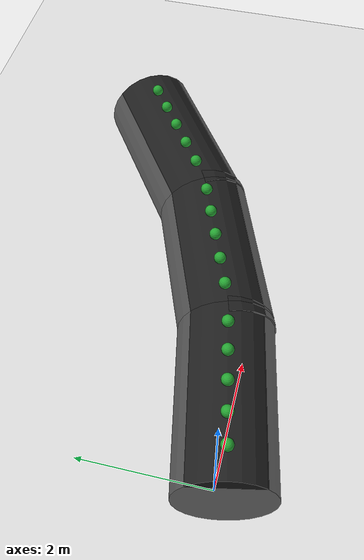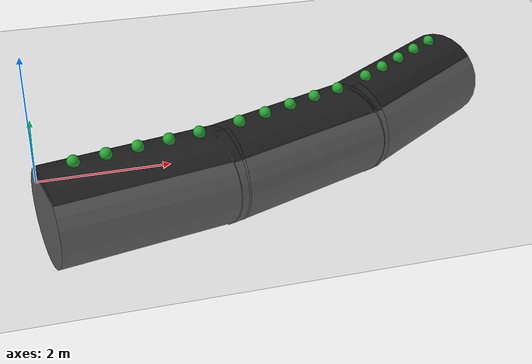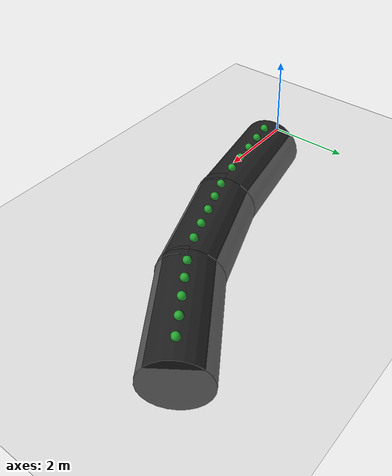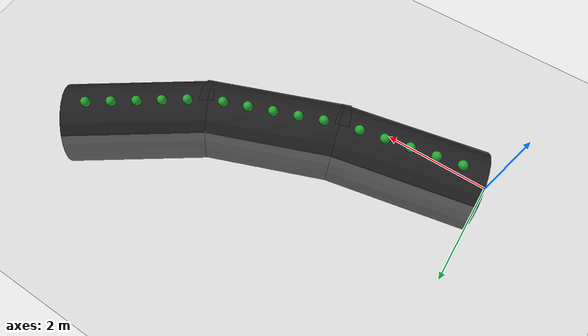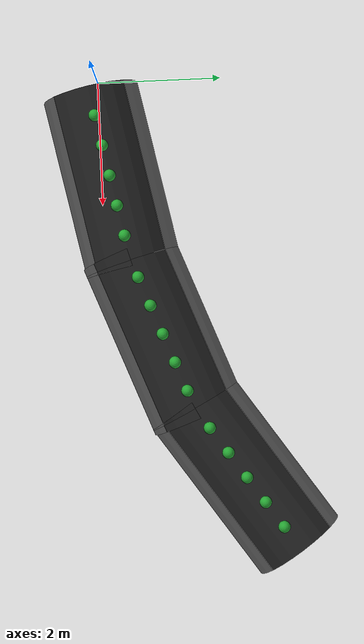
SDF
<sdf version="1.6">
 <world name="default">
  <light name="sun" type="directional">
   <pose>0 0 10 0 -0 0</pose>
   <diffuse>0.8 0.8 0.8 1</diffuse>
   <specular>0.2 0.2 0.2 1</specular>
   <attenuation>
    <range>1000</range>
    <constant>0.9</constant>
    <linear>0.01</linear>
    <quadratic>0.001</quadratic>
   </attenuation>
   <direction>-0.5 0.1 -0.9</direction>
  </light>
  <model name="ground_plane">
   <static>1</static>
   <link name="link">
    <collision name="collision">
     <geometry><plane><normal>0 0 1</normal><size>100 100</size></plane></geometry>
     <surface>
      <contact><collide_bitmask>65535</collide_bitmask></contact>
      <friction><ode><mu>100</mu><mu2>50</mu2></ode></friction>
     </surface>
    </collision>
    <visual name="visual">
     <cast_shadows>0</cast_shadows>
     <geometry><plane><normal>0 0 1</normal><size>100 100</size></plane></geometry>
     <material>
      <script><uri>file://media/materials/scripts/gazebo.material</uri><name>Gazebo/Grey</name></script>
     </material>
    </visual>
   </link>
  </model>
  <gravity>0 0 -9.8</gravity>
  <magnetic_field>6e-06 2.3e-05 -4.2e-05</magnetic_field>
  <atmosphere type="adiabatic"/>
  <physics name="default_physics" default="0" type="ode">
   <max_step_size>0.001</max_step_size>
   <real_time_factor>1</real_time_factor>
   <real_time_update_rate>1000</real_time_update_rate>
  </physics>
  <scene><ambient>0.4 0.4 0.4 1</ambient><background>0.7 0.7 0.7 1</background><shadows>1</shadows></scene>
  <spherical_coordinates>
   <surface_model>EARTH_WGS84</surface_model>
   <latitude_deg>0</latitude_deg>
   <longitude_deg>0</longitude_deg>
   <elevation>0</elevation>
   <heading_deg>0</heading_deg>
  </spherical_coordinates>
  <model name="ex_plant1">
   <static>true</static>
   <link name="link_0">
    <pose>-0 -0 -0.18 0 -0 0</pose>
    <inertial>
     <mass>100</mass>
     <inertia>
      <ixx>0.166667</ixx>
      <ixy>0</ixy>
      <ixz>0</ixz>
      <iyy>0.166667</iyy>
      <iyz>0</iyz>
      <izz>0.166667</izz>
     </inertia>
    </inertial>
    <visual name="visual">
     <pose>0 0 -0.65 3.14159 1.57079 3.14159</pose>
     <geometry><cylinder><radius>0.8</radius><length>3</length></cylinder></geometry>
     <material>
      <lighting>1</lighting>
      <script><uri>file://media/materials/scripts/gazebo.material</uri><name>Gazebo/Black</name></script>
      <shader type="pixel"><normal_map>__default__</normal_map></shader>
      <ambient>0.1 0.1 0.1 1</ambient>
      <diffuse>0.7 0.7 0.7 1</diffuse>
      <specular>0.01 0.01 0.01 1</specular>
      <emissive>0 0 0 1</emissive>
     </material>
    </visual>
    <collision name="collision">
     <geometry><box><size>2 0.8 0.2</size></box></geometry>
     <surface>
      <friction>
       <ode><mu>1</mu><mu2>1</mu2><fdir1>0 0 0</fdir1><slip1>0</slip1><slip2>0</slip2></ode>
       <torsional>
        <coefficient>1</coefficient>
        <patch_radius>0</patch_radius>
        <surface_radius>0</surface_radius>
        <use_patch_radius>1</use_patch_radius>
        <ode><slip>0</slip></ode>
       </torsional>
      </friction>
      <bounce><restitution_coefficient>0</restitution_coefficient><threshold>1e+06</threshold></bounce>
      <contact>
       <collide_without_contact>0</collide_without_contact>
       <collide_without_contact_bitmask>1</collide_without_contact_bitmask>
       <collide_bitmask>1</collide_bitmask>
       <ode>
        <soft_cfm>0</soft_cfm>
        <soft_erp>0.2</soft_erp>
        <kp>1e+13</kp>
        <kd>1</kd>
        <max_vel>0.01</max_vel>
        <min_depth>0</min_depth>
       </ode>
       <bullet>
        <split_impulse>1</split_impulse>
        <split_impulse_penetration_threshold>-0.01</split_impulse_penetration_threshold>
        <soft_cfm>0</soft_cfm>
        <soft_erp>0.2</soft_erp>
        <kp>1e+13</kp>
        <kd>1</kd>
       </bullet>
      </contact>
     </surface>
    </collision>
   </link>
   <link name="link_1_clone_0">
    <pose>-1 -0 0.02 0 -0 0</pose>
    <inertial>
     <mass>1</mass>
     <inertia><ixx>0.1</ixx><ixy>0</ixy><ixz>0</ixz><iyy>0.1</iyy><iyz>0</iyz><izz>0.1</izz></inertia>
    </inertial>
    <visual name="visual">
     <geometry><sphere><radius>0.1</radius></sphere></geometry>
     <material>
      <lighting>1</lighting>
      <script><uri>file://media/materials/scripts/gazebo.material</uri><name>Gazebo/Green</name></script>
      <shader type="pixel"><normal_map>__default__</normal_map></shader>
      <ambient>0.3 1 0.3 1</ambient>
      <diffuse>0.7 0.7 0.7 1</diffuse>
      <specular>0.01 0.01 0.01 1</specular>
      <emissive>0 0 0 1</emissive>
     </material>
    </visual>
    <collision name="collision">
     <geometry><sphere><radius>0.1</radius></sphere></geometry>
     <surface>
      <friction>
       <ode><mu>1</mu><mu2>1</mu2><fdir1>0 0 0</fdir1><slip1>0</slip1><slip2>0</slip2></ode>
       <torsional>
        <coefficient>1</coefficient>
        <patch_radius>0</patch_radius>
        <surface_radius>0</surface_radius>
        <use_patch_radius>1</use_patch_radius>
        <ode><slip>0</slip></ode>
       </torsional>
      </friction>
      <bounce><restitution_coefficient>0</restitution_coefficient><threshold>1e+06</threshold></bounce>
      <contact>
       <collide_without_contact>0</collide_without_contact>
       <collide_without_contact_bitmask>1</collide_without_contact_bitmask>
       <collide_bitmask>1</collide_bitmask>
       <ode>
        <soft_cfm>0</soft_cfm>
        <soft_erp>0.2</soft_erp>
        <kp>1e+13</kp>
        <kd>1</kd>
        <max_vel>0.01</max_vel>
        <min_depth>0</min_depth>
       </ode>
       <bullet>
        <split_impulse>1</split_impulse>
        <split_impulse_penetration_threshold>-0.01</split_impulse_penetration_threshold>
        <soft_cfm>0</soft_cfm>
        <soft_erp>0.2</soft_erp>
        <kp>1e+13</kp>
        <kd>1</kd>
       </bullet>
      </contact>
     </surface>
    </collision>
   </link>
   <link name="link_1_clone_1">
    <pose>-0.5 0 0.02 0 -0 0</pose>
    <inertial>
     <mass>1</mass>
     <inertia><ixx>0.1</ixx><ixy>0</ixy><ixz>0</ixz><iyy>0.1</iyy><iyz>0</iyz><izz>0.1</izz></inertia>
    </inertial>
    <visual name="visual">
     <geometry><sphere><radius>0.1</radius></sphere></geometry>
     <material>
      <lighting>1</lighting>
      <script><uri>file://media/materials/scripts/gazebo.material</uri><name>Gazebo/Green</name></script>
      <shader type="pixel"><normal_map>__default__</normal_map></shader>
      <ambient>0.3 1 0.3 1</ambient>
      <diffuse>0.7 0.7 0.7 1</diffuse>
      <specular>0.01 0.01 0.01 1</specular>
      <emissive>0 0 0 1</emissive>
     </material>
    </visual>
    <collision name="collision">
     <geometry><sphere><radius>0.1</radius></sphere></geometry>
     <surface>
      <friction>
       <ode><mu>1</mu><mu2>1</mu2><fdir1>0 0 0</fdir1><slip1>0</slip1><slip2>0</slip2></ode>
       <torsional>
        <coefficient>1</coefficient>
        <patch_radius>0</patch_radius>
        <surface_radius>0</surface_radius>
        <use_patch_radius>1</use_patch_radius>
        <ode><slip>0</slip></ode>
       </torsional>
      </friction>
      <bounce><restitution_coefficient>0</restitution_coefficient><threshold>1e+06</threshold></bounce>
      <contact>
       <collide_without_contact>0</collide_without_contact>
       <collide_without_contact_bitmask>1</collide_without_contact_bitmask>
       <collide_bitmask>1</collide_bitmask>
       <ode>
        <soft_cfm>0</soft_cfm>
        <soft_erp>0.2</soft_erp>
        <kp>1e+13</kp>
        <kd>1</kd>
        <max_vel>0.01</max_vel>
        <min_depth>0</min_depth>
       </ode>
       <bullet>
        <split_impulse>1</split_impulse>
        <split_impulse_penetration_threshold>-0.01</split_impulse_penetration_threshold>
        <soft_cfm>0</soft_cfm>
        <soft_erp>0.2</soft_erp>
        <kp>1e+13</kp>
        <kd>1</kd>
       </bullet>
      </contact>
     </surface>
    </collision>
   </link>
   <link name="link_1_clone_2">
    <pose>0.5 0 0.02 0 -0 0</pose>
    <inertial>
     <mass>1</mass>
     <inertia><ixx>0.1</ixx><ixy>0</ixy><ixz>0</ixz><iyy>0.1</iyy><iyz>0</iyz><izz>0.1</izz></inertia>
    </inertial>
    <visual name="visual">
     <geometry><sphere><radius>0.1</radius></sphere></geometry>
     <material>
      <lighting>1</lighting>
      <script><uri>file://media/materials/scripts/gazebo.material</uri><name>Gazebo/Green</name></script>
      <shader type="pixel"><normal_map>__default__</normal_map></shader>
      <ambient>0.3 1 0.3 1</ambient>
      <diffuse>0.7 0.7 0.7 1</diffuse>
      <specular>0.01 0.01 0.01 1</specular>
      <emissive>0 0 0 1</emissive>
     </material>
    </visual>
    <collision name="collision">
     <geometry><sphere><radius>0.1</radius></sphere></geometry>
     <surface>
      <friction>
       <ode><mu>1</mu><mu2>1</mu2><fdir1>0 0 0</fdir1><slip1>0</slip1><slip2>0</slip2></ode>
       <torsional>
        <coefficient>1</coefficient>
        <patch_radius>0</patch_radius>
        <surface_radius>0</surface_radius>
        <use_patch_radius>1</use_patch_radius>
        <ode><slip>0</slip></ode>
       </torsional>
      </friction>
      <bounce><restitution_coefficient>0</restitution_coefficient><threshold>1e+06</threshold></bounce>
      <contact>
       <collide_without_contact>0</collide_without_contact>
       <collide_without_contact_bitmask>1</collide_without_contact_bitmask>
       <collide_bitmask>1</collide_bitmask>
       <ode>
        <soft_cfm>0</soft_cfm>
        <soft_erp>0.2</soft_erp>
        <kp>1e+13</kp>
        <kd>1</kd>
        <max_vel>0.01</max_vel>
        <min_depth>0</min_depth>
       </ode>
       <bullet>
        <split_impulse>1</split_impulse>
        <split_impulse_penetration_threshold>-0.01</split_impulse_penetration_threshold>
        <soft_cfm>0</soft_cfm>
        <soft_erp>0.2</soft_erp>
        <kp>1e+13</kp>
        <kd>1</kd>
       </bullet>
      </contact>
     </surface>
    </collision>
   </link>
   <link name="link_1_clone_2_clone">
    <pose>1 0 0.02 0 -0 0</pose>
    <inertial>
     <mass>1</mass>
     <inertia><ixx>0.1</ixx><ixy>0</ixy><ixz>0</ixz><iyy>0.1</iyy><iyz>0</iyz><izz>0.1</izz></inertia>
    </inertial>
    <visual name="visual">
     <geometry><sphere><radius>0.1</radius></sphere></geometry>
     <material>
      <lighting>1</lighting>
      <script><uri>file://media/materials/scripts/gazebo.material</uri><name>Gazebo/Green</name></script>
      <shader type="pixel"><normal_map>__default__</normal_map></shader>
      <ambient>0.3 1 0.3 1</ambient>
      <diffuse>0.7 0.7 0.7 1</diffuse>
      <specular>0.01 0.01 0.01 1</specular>
      <emissive>0 0 0 1</emissive>
     </material>
    </visual>
    <collision name="collision">
     <geometry><sphere><radius>0.1</radius></sphere></geometry>
     <surface>
      <friction>
       <ode><mu>1</mu><mu2>1</mu2><fdir1>0 0 0</fdir1><slip1>0</slip1><slip2>0</slip2></ode>
       <torsional>
        <coefficient>1</coefficient>
        <patch_radius>0</patch_radius>
        <surface_radius>0</surface_radius>
        <use_patch_radius>1</use_patch_radius>
        <ode><slip>0</slip></ode>
       </torsional>
      </friction>
      <bounce><restitution_coefficient>0</restitution_coefficient><threshold>1e+06</threshold></bounce>
      <contact>
       <collide_without_contact>0</collide_without_contact>
       <collide_without_contact_bitmask>1</collide_without_contact_bitmask>
       <collide_bitmask>1</collide_bitmask>
       <ode>
        <soft_cfm>0</soft_cfm>
        <soft_erp>0.2</soft_erp>
        <kp>1e+13</kp>
        <kd>1</kd>
        <max_vel>0.01</max_vel>
        <min_depth>0</min_depth>
       </ode>
       <bullet>
        <split_impulse>1</split_impulse>
        <split_impulse_penetration_threshold>-0.01</split_impulse_penetration_threshold>
        <soft_cfm>0</soft_cfm>
        <soft_erp>0.2</soft_erp>
        <kp>1e+13</kp>
        <kd>1</kd>
       </bullet>
      </contact>
     </surface>
    </collision>
   </link>
   <link name="link_1_clone_3">
    <pose>0 -0 0.02 0 -0 0</pose>
    <inertial>
     <mass>1</mass>
     <inertia><ixx>0.1</ixx><ixy>0</ixy><ixz>0</ixz><iyy>0.1</iyy><iyz>0</iyz><izz>0.1</izz></inertia>
    </inertial>
    <visual name="visual">
     <geometry><sphere><radius>0.1</radius></sphere></geometry>
     <material>
      <lighting>1</lighting>
      <script><uri>file://media/materials/scripts/gazebo.material</uri><name>Gazebo/Green</name></script>
      <shader type="pixel"><normal_map>__default__</normal_map></shader>
      <ambient>0.3 1 0.3 1</ambient>
      <diffuse>0.7 0.7 0.7 1</diffuse>
      <specular>0.01 0.01 0.01 1</specular>
      <emissive>0 0 0 1</emissive>
     </material>
    </visual>
    <collision name="collision">
     <geometry><sphere><radius>0.1</radius></sphere></geometry>
     <surface>
      <friction>
       <ode><mu>1</mu><mu2>1</mu2><fdir1>0 0 0</fdir1><slip1>0</slip1><slip2>0</slip2></ode>
       <torsional>
        <coefficient>1</coefficient>
        <patch_radius>0</patch_radius>
        <surface_radius>0</surface_radius>
        <use_patch_radius>1</use_patch_radius>
        <ode><slip>0</slip></ode>
       </torsional>
      </friction>
      <bounce><restitution_coefficient>0</restitution_coefficient><threshold>1e+06</threshold></bounce>
      <contact>
       <collide_without_contact>0</collide_without_contact>
       <collide_without_contact_bitmask>1</collide_without_contact_bitmask>
       <collide_bitmask>1</collide_bitmask>
       <ode>
        <soft_cfm>0</soft_cfm>
        <soft_erp>0.2</soft_erp>
        <kp>1e+13</kp>
        <kd>1</kd>
        <max_vel>0.01</max_vel>
        <min_depth>0</min_depth>
       </ode>
       <bullet>
        <split_impulse>1</split_impulse>
        <split_impulse_penetration_threshold>-0.01</split_impulse_penetration_threshold>
        <soft_cfm>0</soft_cfm>
        <soft_erp>0.2</soft_erp>
        <kp>1e+13</kp>
        <kd>1</kd>
       </bullet>
      </contact>
     </surface>
    </collision>
   </link>
   <joint name="link_0_JOINT_2" type="revolute">
    <parent>link_0</parent>
    <child>link_1_clone_0</child>
    <axis>
     <xyz>1 0 0</xyz>
     <use_parent_model_frame>0</use_parent_model_frame>
     <limit>
      <lower>-1.79769e+308</lower>
      <upper>1.79769e+308</upper>
      <effort>-1</effort>
      <velocity>-1</velocity>
     </limit>
     <dynamics>
      <spring_reference>0</spring_reference>
      <spring_stiffness>0</spring_stiffness>
      <damping>0</damping>
      <friction>0</friction>
     </dynamics>
    </axis>
    <physics>
     <ode><limit><cfm>0</cfm><erp>0.2</erp></limit><suspension><cfm>0</cfm><erp>0.2</erp></suspension></ode>
    </physics>
   </joint>
   <joint name="link_0_JOINT_3" type="revolute">
    <parent>link_0</parent>
    <child>link_1_clone_1</child>
    <axis>
     <xyz>1 0 0</xyz>
     <use_parent_model_frame>0</use_parent_model_frame>
     <limit>
      <lower>-1.79769e+308</lower>
      <upper>1.79769e+308</upper>
      <effort>-1</effort>
      <velocity>-1</velocity>
     </limit>
     <dynamics>
      <spring_reference>0</spring_reference>
      <spring_stiffness>0</spring_stiffness>
      <damping>0</damping>
      <friction>0</friction>
     </dynamics>
    </axis>
    <physics>
     <ode><limit><cfm>0</cfm><erp>0.2</erp></limit><suspension><cfm>0</cfm><erp>0.2</erp></suspension></ode>
    </physics>
   </joint>
   <joint name="link_0_JOINT_4" type="revolute">
    <parent>link_0</parent>
    <child>link_1_clone_3</child>
    <axis>
     <xyz>1 0 0</xyz>
     <use_parent_model_frame>0</use_parent_model_frame>
     <limit>
      <lower>-1.79769e+308</lower>
      <upper>1.79769e+308</upper>
      <effort>-1</effort>
      <velocity>-1</velocity>
     </limit>
     <dynamics>
      <spring_reference>0</spring_reference>
      <spring_stiffness>0</spring_stiffness>
      <damping>0</damping>
      <friction>0</friction>
     </dynamics>
    </axis>
    <physics>
     <ode><limit><cfm>0</cfm><erp>0.2</erp></limit><suspension><cfm>0</cfm><erp>0.2</erp></suspension></ode>
    </physics>
   </joint>
   <joint name="link_0_JOINT_5" type="revolute">
    <parent>link_0</parent>
    <child>link_1_clone_2</child>
    <axis>
     <xyz>1 0 0</xyz>
     <use_parent_model_frame>0</use_parent_model_frame>
     <limit>
      <lower>-1.79769e+308</lower>
      <upper>1.79769e+308</upper>
      <effort>-1</effort>
      <velocity>-1</velocity>
     </limit>
     <dynamics>
      <spring_reference>0</spring_reference>
      <spring_stiffness>0</spring_stiffness>
      <damping>0</damping>
      <friction>0</friction>
     </dynamics>
    </axis>
    <physics>
     <ode><limit><cfm>0</cfm><erp>0.2</erp></limit><suspension><cfm>0</cfm><erp>0.2</erp></suspension></ode>
    </physics>
   </joint>
   <joint name="link_0_JOINT_6" type="revolute">
    <parent>link_0</parent>
    <child>link_1_clone_2_clone</child>
    <axis>
     <xyz>1 0 0</xyz>
     <use_parent_model_frame>0</use_parent_model_frame>
     <limit>
      <lower>-1.79769e+308</lower>
      <upper>1.79769e+308</upper>
      <effort>-1</effort>
      <velocity>-1</velocity>
     </limit>
     <dynamics>
      <spring_reference>0</spring_reference>
      <spring_stiffness>0</spring_stiffness>
      <damping>0</damping>
      <friction>0</friction>
     </dynamics>
    </axis>
    <physics>
     <ode><limit><cfm>0</cfm><erp>0.2</erp></limit><suspension><cfm>0</cfm><erp>0.2</erp></suspension></ode>
    </physics>
   </joint>
   <static>0</static>
   <pose>1.54467 0.142167 0.279979 -3.2e-05 2.2e-05 0.199439</pose>
  </model>
  <model name="ex_plant1_clone">
   <link name="link_0">
    <pose>-0 -0 -0.18 0 -0 0</pose>
    <inertial>
     <mass>100</mass>
     <inertia>
      <ixx>0.166667</ixx>
      <ixy>0</ixy>
      <ixz>0</ixz>
      <iyy>0.166667</iyy>
      <iyz>0</iyz>
      <izz>0.166667</izz>
     </inertia>
    </inertial>
    <visual name="visual">
     <pose>0 0 -0.65 3.14159 1.57079 3.14159</pose>
     <geometry><cylinder><radius>0.8</radius><length>3</length></cylinder></geometry>
     <material>
      <lighting>1</lighting>
      <script><uri>file://media/materials/scripts/gazebo.material</uri><name>Gazebo/Black</name></script>
      <shader type="pixel"><normal_map>__default__</normal_map></shader>
      <ambient>0.1 0.1 0.1 1</ambient>
      <diffuse>0.7 0.7 0.7 1</diffuse>
      <specular>0.01 0.01 0.01 1</specular>
      <emissive>0 0 0 1</emissive>
     </material>
    </visual>
    <collision name="collision">
     <geometry><box><size>2 0.8 0.2</size></box></geometry>
     <surface>
      <friction>
       <ode><mu>1</mu><mu2>1</mu2><fdir1>0 0 0</fdir1><slip1>0</slip1><slip2>0</slip2></ode>
       <torsional>
        <coefficient>1</coefficient>
        <patch_radius>0</patch_radius>
        <surface_radius>0</surface_radius>
        <use_patch_radius>1</use_patch_radius>
        <ode><slip>0</slip></ode>
       </torsional>
      </friction>
      <bounce><restitution_coefficient>0</restitution_coefficient><threshold>1e+06</threshold></bounce>
      <contact>
       <collide_without_contact>0</collide_without_contact>
       <collide_without_contact_bitmask>1</collide_without_contact_bitmask>
       <collide_bitmask>1</collide_bitmask>
       <ode>
        <soft_cfm>0</soft_cfm>
        <soft_erp>0.2</soft_erp>
        <kp>1e+13</kp>
        <kd>1</kd>
        <max_vel>0.01</max_vel>
        <min_depth>0</min_depth>
       </ode>
       <bullet>
        <split_impulse>1</split_impulse>
        <split_impulse_penetration_threshold>-0.01</split_impulse_penetration_threshold>
        <soft_cfm>0</soft_cfm>
        <soft_erp>0.2</soft_erp>
        <kp>1e+13</kp>
        <kd>1</kd>
       </bullet>
      </contact>
     </surface>
    </collision>
   </link>
   <link name="link_1_clone_0">
    <pose>-1 -0 0.02 0 -0 0</pose>
    <inertial>
     <mass>1</mass>
     <inertia><ixx>0.1</ixx><ixy>0</ixy><ixz>0</ixz><iyy>0.1</iyy><iyz>0</iyz><izz>0.1</izz></inertia>
    </inertial>
    <visual name="visual">
     <geometry><sphere><radius>0.1</radius></sphere></geometry>
     <material>
      <lighting>1</lighting>
      <script><uri>file://media/materials/scripts/gazebo.material</uri><name>Gazebo/Green</name></script>
      <shader type="pixel"><normal_map>__default__</normal_map></shader>
      <ambient>0.3 1 0.3 1</ambient>
      <diffuse>0.7 0.7 0.7 1</diffuse>
      <specular>0.01 0.01 0.01 1</specular>
      <emissive>0 0 0 1</emissive>
     </material>
    </visual>
    <collision name="collision">
     <geometry><sphere><radius>0.1</radius></sphere></geometry>
     <surface>
      <friction>
       <ode><mu>1</mu><mu2>1</mu2><fdir1>0 0 0</fdir1><slip1>0</slip1><slip2>0</slip2></ode>
       <torsional>
        <coefficient>1</coefficient>
        <patch_radius>0</patch_radius>
        <surface_radius>0</surface_radius>
        <use_patch_radius>1</use_patch_radius>
        <ode><slip>0</slip></ode>
       </torsional>
      </friction>
      <bounce><restitution_coefficient>0</restitution_coefficient><threshold>1e+06</threshold></bounce>
      <contact>
       <collide_without_contact>0</collide_without_contact>
       <collide_without_contact_bitmask>1</collide_without_contact_bitmask>
       <collide_bitmask>1</collide_bitmask>
       <ode>
        <soft_cfm>0</soft_cfm>
        <soft_erp>0.2</soft_erp>
        <kp>1e+13</kp>
        <kd>1</kd>
        <max_vel>0.01</max_vel>
        <min_depth>0</min_depth>
       </ode>
       <bullet>
        <split_impulse>1</split_impulse>
        <split_impulse_penetration_threshold>-0.01</split_impulse_penetration_threshold>
        <soft_cfm>0</soft_cfm>
        <soft_erp>0.2</soft_erp>
        <kp>1e+13</kp>
        <kd>1</kd>
       </bullet>
      </contact>
     </surface>
    </collision>
   </link>
   <link name="link_1_clone_1">
    <pose>-0.5 0 0.02 0 -0 0</pose>
    <inertial>
     <mass>1</mass>
     <inertia><ixx>0.1</ixx><ixy>0</ixy><ixz>0</ixz><iyy>0.1</iyy><iyz>0</iyz><izz>0.1</izz></inertia>
    </inertial>
    <visual name="visual">
     <geometry><sphere><radius>0.1</radius></sphere></geometry>
     <material>
      <lighting>1</lighting>
      <script><uri>file://media/materials/scripts/gazebo.material</uri><name>Gazebo/Green</name></script>
      <shader type="pixel"><normal_map>__default__</normal_map></shader>
      <ambient>0.3 1 0.3 1</ambient>
      <diffuse>0.7 0.7 0.7 1</diffuse>
      <specular>0.01 0.01 0.01 1</specular>
      <emissive>0 0 0 1</emissive>
     </material>
    </visual>
    <collision name="collision">
     <geometry><sphere><radius>0.1</radius></sphere></geometry>
     <surface>
      <friction>
       <ode><mu>1</mu><mu2>1</mu2><fdir1>0 0 0</fdir1><slip1>0</slip1><slip2>0</slip2></ode>
       <torsional>
        <coefficient>1</coefficient>
        <patch_radius>0</patch_radius>
        <surface_radius>0</surface_radius>
        <use_patch_radius>1</use_patch_radius>
        <ode><slip>0</slip></ode>
       </torsional>
      </friction>
      <bounce><restitution_coefficient>0</restitution_coefficient><threshold>1e+06</threshold></bounce>
      <contact>
       <collide_without_contact>0</collide_without_contact>
       <collide_without_contact_bitmask>1</collide_without_contact_bitmask>
       <collide_bitmask>1</collide_bitmask>
       <ode>
        <soft_cfm>0</soft_cfm>
        <soft_erp>0.2</soft_erp>
        <kp>1e+13</kp>
        <kd>1</kd>
        <max_vel>0.01</max_vel>
        <min_depth>0</min_depth>
       </ode>
       <bullet>
        <split_impulse>1</split_impulse>
        <split_impulse_penetration_threshold>-0.01</split_impulse_penetration_threshold>
        <soft_cfm>0</soft_cfm>
        <soft_erp>0.2</soft_erp>
        <kp>1e+13</kp>
        <kd>1</kd>
       </bullet>
      </contact>
     </surface>
    </collision>
   </link>
   <link name="link_1_clone_2">
    <pose>0.5 0 0.02 0 -0 0</pose>
    <inertial>
     <mass>1</mass>
     <inertia><ixx>0.1</ixx><ixy>0</ixy><ixz>0</ixz><iyy>0.1</iyy><iyz>0</iyz><izz>0.1</izz></inertia>
    </inertial>
    <visual name="visual">
     <geometry><sphere><radius>0.1</radius></sphere></geometry>
     <material>
      <lighting>1</lighting>
      <script><uri>file://media/materials/scripts/gazebo.material</uri><name>Gazebo/Green</name></script>
      <shader type="pixel"><normal_map>__default__</normal_map></shader>
      <ambient>0.3 1 0.3 1</ambient>
      <diffuse>0.7 0.7 0.7 1</diffuse>
      <specular>0.01 0.01 0.01 1</specular>
      <emissive>0 0 0 1</emissive>
     </material>
    </visual>
    <collision name="collision">
     <geometry><sphere><radius>0.1</radius></sphere></geometry>
     <surface>
      <friction>
       <ode><mu>1</mu><mu2>1</mu2><fdir1>0 0 0</fdir1><slip1>0</slip1><slip2>0</slip2></ode>
       <torsional>
        <coefficient>1</coefficient>
        <patch_radius>0</patch_radius>
        <surface_radius>0</surface_radius>
        <use_patch_radius>1</use_patch_radius>
        <ode><slip>0</slip></ode>
       </torsional>
      </friction>
      <bounce><restitution_coefficient>0</restitution_coefficient><threshold>1e+06</threshold></bounce>
      <contact>
       <collide_without_contact>0</collide_without_contact>
       <collide_without_contact_bitmask>1</collide_without_contact_bitmask>
       <collide_bitmask>1</collide_bitmask>
       <ode>
        <soft_cfm>0</soft_cfm>
        <soft_erp>0.2</soft_erp>
        <kp>1e+13</kp>
        <kd>1</kd>
        <max_vel>0.01</max_vel>
        <min_depth>0</min_depth>
       </ode>
       <bullet>
        <split_impulse>1</split_impulse>
        <split_impulse_penetration_threshold>-0.01</split_impulse_penetration_threshold>
        <soft_cfm>0</soft_cfm>
        <soft_erp>0.2</soft_erp>
        <kp>1e+13</kp>
        <kd>1</kd>
       </bullet>
      </contact>
     </surface>
    </collision>
   </link>
   <link name="link_1_clone_2_clone">
    <pose>1 0 0.02 0 -0 0</pose>
    <inertial>
     <mass>1</mass>
     <inertia><ixx>0.1</ixx><ixy>0</ixy><ixz>0</ixz><iyy>0.1</iyy><iyz>0</iyz><izz>0.1</izz></inertia>
    </inertial>
    <visual name="visual">
     <geometry><sphere><radius>0.1</radius></sphere></geometry>
     <material>
      <lighting>1</lighting>
      <script><uri>file://media/materials/scripts/gazebo.material</uri><name>Gazebo/Green</name></script>
      <shader type="pixel"><normal_map>__default__</normal_map></shader>
      <ambient>0.3 1 0.3 1</ambient>
      <diffuse>0.7 0.7 0.7 1</diffuse>
      <specular>0.01 0.01 0.01 1</specular>
      <emissive>0 0 0 1</emissive>
     </material>
    </visual>
    <collision name="collision">
     <geometry><sphere><radius>0.1</radius></sphere></geometry>
     <surface>
      <friction>
       <ode><mu>1</mu><mu2>1</mu2><fdir1>0 0 0</fdir1><slip1>0</slip1><slip2>0</slip2></ode>
       <torsional>
        <coefficient>1</coefficient>
        <patch_radius>0</patch_radius>
        <surface_radius>0</surface_radius>
        <use_patch_radius>1</use_patch_radius>
        <ode><slip>0</slip></ode>
       </torsional>
      </friction>
      <bounce><restitution_coefficient>0</restitution_coefficient><threshold>1e+06</threshold></bounce>
      <contact>
       <collide_without_contact>0</collide_without_contact>
       <collide_without_contact_bitmask>1</collide_without_contact_bitmask>
       <collide_bitmask>1</collide_bitmask>
       <ode>
        <soft_cfm>0</soft_cfm>
        <soft_erp>0.2</soft_erp>
        <kp>1e+13</kp>
        <kd>1</kd>
        <max_vel>0.01</max_vel>
        <min_depth>0</min_depth>
       </ode>
       <bullet>
        <split_impulse>1</split_impulse>
        <split_impulse_penetration_threshold>-0.01</split_impulse_penetration_threshold>
        <soft_cfm>0</soft_cfm>
        <soft_erp>0.2</soft_erp>
        <kp>1e+13</kp>
        <kd>1</kd>
       </bullet>
      </contact>
     </surface>
    </collision>
   </link>
   <link name="link_1_clone_3">
    <pose>0 -0 0.02 0 -0 0</pose>
    <inertial>
     <mass>1</mass>
     <inertia><ixx>0.1</ixx><ixy>0</ixy><ixz>0</ixz><iyy>0.1</iyy><iyz>0</iyz><izz>0.1</izz></inertia>
    </inertial>
    <visual name="visual">
     <geometry><sphere><radius>0.1</radius></sphere></geometry>
     <material>
      <lighting>1</lighting>
      <script><uri>file://media/materials/scripts/gazebo.material</uri><name>Gazebo/Green</name></script>
      <shader type="pixel"><normal_map>__default__</normal_map></shader>
      <ambient>0.3 1 0.3 1</ambient>
      <diffuse>0.7 0.7 0.7 1</diffuse>
      <specular>0.01 0.01 0.01 1</specular>
      <emissive>0 0 0 1</emissive>
     </material>
    </visual>
    <collision name="collision">
     <geometry><sphere><radius>0.1</radius></sphere></geometry>
     <surface>
      <friction>
       <ode><mu>1</mu><mu2>1</mu2><fdir1>0 0 0</fdir1><slip1>0</slip1><slip2>0</slip2></ode>
       <torsional>
        <coefficient>1</coefficient>
        <patch_radius>0</patch_radius>
        <surface_radius>0</surface_radius>
        <use_patch_radius>1</use_patch_radius>
        <ode><slip>0</slip></ode>
       </torsional>
      </friction>
      <bounce><restitution_coefficient>0</restitution_coefficient><threshold>1e+06</threshold></bounce>
      <contact>
       <collide_without_contact>0</collide_without_contact>
       <collide_without_contact_bitmask>1</collide_without_contact_bitmask>
       <collide_bitmask>1</collide_bitmask>
       <ode>
        <soft_cfm>0</soft_cfm>
        <soft_erp>0.2</soft_erp>
        <kp>1e+13</kp>
        <kd>1</kd>
        <max_vel>0.01</max_vel>
        <min_depth>0</min_depth>
       </ode>
       <bullet>
        <split_impulse>1</split_impulse>
        <split_impulse_penetration_threshold>-0.01</split_impulse_penetration_threshold>
        <soft_cfm>0</soft_cfm>
        <soft_erp>0.2</soft_erp>
        <kp>1e+13</kp>
        <kd>1</kd>
       </bullet>
      </contact>
     </surface>
    </collision>
   </link>
   <joint name="link_0_JOINT_2" type="revolute">
    <parent>link_0</parent>
    <child>link_1_clone_0</child>
    <axis>
     <xyz>1 0 0</xyz>
     <use_parent_model_frame>0</use_parent_model_frame>
     <limit>
      <lower>-1.79769e+308</lower>
      <upper>1.79769e+308</upper>
      <effort>-1</effort>
      <velocity>-1</velocity>
     </limit>
     <dynamics>
      <spring_reference>0</spring_reference>
      <spring_stiffness>0</spring_stiffness>
      <damping>0</damping>
      <friction>0</friction>
     </dynamics>
    </axis>
    <physics>
     <ode><limit><cfm>0</cfm><erp>0.2</erp></limit><suspension><cfm>0</cfm><erp>0.2</erp></suspension></ode>
    </physics>
   </joint>
   <joint name="link_0_JOINT_3" type="revolute">
    <parent>link_0</parent>
    <child>link_1_clone_1</child>
    <axis>
     <xyz>1 0 0</xyz>
     <use_parent_model_frame>0</use_parent_model_frame>
     <limit>
      <lower>-1.79769e+308</lower>
      <upper>1.79769e+308</upper>
      <effort>-1</effort>
      <velocity>-1</velocity>
     </limit>
     <dynamics>
      <spring_reference>0</spring_reference>
      <spring_stiffness>0</spring_stiffness>
      <damping>0</damping>
      <friction>0</friction>
     </dynamics>
    </axis>
    <physics>
     <ode><limit><cfm>0</cfm><erp>0.2</erp></limit><suspension><cfm>0</cfm><erp>0.2</erp></suspension></ode>
    </physics>
   </joint>
   <joint name="link_0_JOINT_4" type="revolute">
    <parent>link_0</parent>
    <child>link_1_clone_3</child>
    <axis>
     <xyz>1 0 0</xyz>
     <use_parent_model_frame>0</use_parent_model_frame>
     <limit>
      <lower>-1.79769e+308</lower>
      <upper>1.79769e+308</upper>
      <effort>-1</effort>
      <velocity>-1</velocity>
     </limit>
     <dynamics>
      <spring_reference>0</spring_reference>
      <spring_stiffness>0</spring_stiffness>
      <damping>0</damping>
      <friction>0</friction>
     </dynamics>
    </axis>
    <physics>
     <ode><limit><cfm>0</cfm><erp>0.2</erp></limit><suspension><cfm>0</cfm><erp>0.2</erp></suspension></ode>
    </physics>
   </joint>
   <joint name="link_0_JOINT_5" type="revolute">
    <parent>link_0</parent>
    <child>link_1_clone_2</child>
    <axis>
     <xyz>1 0 0</xyz>
     <use_parent_model_frame>0</use_parent_model_frame>
     <limit>
      <lower>-1.79769e+308</lower>
      <upper>1.79769e+308</upper>
      <effort>-1</effort>
      <velocity>-1</velocity>
     </limit>
     <dynamics>
      <spring_reference>0</spring_reference>
      <spring_stiffness>0</spring_stiffness>
      <damping>0</damping>
      <friction>0</friction>
     </dynamics>
    </axis>
    <physics>
     <ode><limit><cfm>0</cfm><erp>0.2</erp></limit><suspension><cfm>0</cfm><erp>0.2</erp></suspension></ode>
    </physics>
   </joint>
   <joint name="link_0_JOINT_6" type="revolute">
    <parent>link_0</parent>
    <child>link_1_clone_2_clone</child>
    <axis>
     <xyz>1 0 0</xyz>
     <use_parent_model_frame>0</use_parent_model_frame>
     <limit>
      <lower>-1.79769e+308</lower>
      <upper>1.79769e+308</upper>
      <effort>-1</effort>
      <velocity>-1</velocity>
     </limit>
     <dynamics>
      <spring_reference>0</spring_reference>
      <spring_stiffness>0</spring_stiffness>
      <damping>0</damping>
      <friction>0</friction>
     </dynamics>
    </axis>
    <physics>
     <ode><limit><cfm>0</cfm><erp>0.2</erp></limit><suspension><cfm>0</cfm><erp>0.2</erp></suspension></ode>
    </physics>
   </joint>
   <static>0</static>
   <pose>4.13866 0.888039 0.279979 -2.8e-05 2.7e-05 0.366538</pose>
  </model>
  <model name="ex_plant1_clone_clone">
   <link name="link_0">
    <pose>-0 -0 -0.18 0 -0 0</pose>
    <inertial>
     <mass>100</mass>
     <inertia>
      <ixx>0.166667</ixx>
      <ixy>0</ixy>
      <ixz>0</ixz>
      <iyy>0.166667</iyy>
      <iyz>0</iyz>
      <izz>0.166667</izz>
     </inertia>
    </inertial>
    <visual name="visual">
     <pose>0 0 -0.65 3.14159 1.57079 3.14159</pose>
     <geometry><cylinder><radius>0.8</radius><length>3</length></cylinder></geometry>
     <material>
      <lighting>1</lighting>
      <script><uri>file://media/materials/scripts/gazebo.material</uri><name>Gazebo/Black</name></script>
      <shader type="pixel"><normal_map>__default__</normal_map></shader>
      <ambient>0.1 0.1 0.1 1</ambient>
      <diffuse>0.7 0.7 0.7 1</diffuse>
      <specular>0.01 0.01 0.01 1</specular>
      <emissive>0 0 0 1</emissive>
     </material>
    </visual>
    <collision name="collision">
     <geometry><box><size>2 0.8 0.2</size></box></geometry>
     <surface>
      <friction>
       <ode><mu>1</mu><mu2>1</mu2><fdir1>0 0 0</fdir1><slip1>0</slip1><slip2>0</slip2></ode>
       <torsional>
        <coefficient>1</coefficient>
        <patch_radius>0</patch_radius>
        <surface_radius>0</surface_radius>
        <use_patch_radius>1</use_patch_radius>
        <ode><slip>0</slip></ode>
       </torsional>
      </friction>
      <bounce><restitution_coefficient>0</restitution_coefficient><threshold>1e+06</threshold></bounce>
      <contact>
       <collide_without_contact>0</collide_without_contact>
       <collide_without_contact_bitmask>1</collide_without_contact_bitmask>
       <collide_bitmask>1</collide_bitmask>
       <ode>
        <soft_cfm>0</soft_cfm>
        <soft_erp>0.2</soft_erp>
        <kp>1e+13</kp>
        <kd>1</kd>
        <max_vel>0.01</max_vel>
        <min_depth>0</min_depth>
       </ode>
       <bullet>
        <split_impulse>1</split_impulse>
        <split_impulse_penetration_threshold>-0.01</split_impulse_penetration_threshold>
        <soft_cfm>0</soft_cfm>
        <soft_erp>0.2</soft_erp>
        <kp>1e+13</kp>
        <kd>1</kd>
       </bullet>
      </contact>
     </surface>
    </collision>
   </link>
   <link name="link_1_clone_0">
    <pose>-1 -0 0.02 0 -0 0</pose>
    <inertial>
     <mass>1</mass>
     <inertia><ixx>0.1</ixx><ixy>0</ixy><ixz>0</ixz><iyy>0.1</iyy><iyz>0</iyz><izz>0.1</izz></inertia>
    </inertial>
    <visual name="visual">
     <geometry><sphere><radius>0.1</radius></sphere></geometry>
     <material>
      <lighting>1</lighting>
      <script><uri>file://media/materials/scripts/gazebo.material</uri><name>Gazebo/Green</name></script>
      <shader type="pixel"><normal_map>__default__</normal_map></shader>
      <ambient>0.3 1 0.3 1</ambient>
      <diffuse>0.7 0.7 0.7 1</diffuse>
      <specular>0.01 0.01 0.01 1</specular>
      <emissive>0 0 0 1</emissive>
     </material>
    </visual>
    <collision name="collision">
     <geometry><sphere><radius>0.1</radius></sphere></geometry>
     <surface>
      <friction>
       <ode><mu>1</mu><mu2>1</mu2><fdir1>0 0 0</fdir1><slip1>0</slip1><slip2>0</slip2></ode>
       <torsional>
        <coefficient>1</coefficient>
        <patch_radius>0</patch_radius>
        <surface_radius>0</surface_radius>
        <use_patch_radius>1</use_patch_radius>
        <ode><slip>0</slip></ode>
       </torsional>
      </friction>
      <bounce><restitution_coefficient>0</restitution_coefficient><threshold>1e+06</threshold></bounce>
      <contact>
       <collide_without_contact>0</collide_without_contact>
       <collide_without_contact_bitmask>1</collide_without_contact_bitmask>
       <collide_bitmask>1</collide_bitmask>
       <ode>
        <soft_cfm>0</soft_cfm>
        <soft_erp>0.2</soft_erp>
        <kp>1e+13</kp>
        <kd>1</kd>
        <max_vel>0.01</max_vel>
        <min_depth>0</min_depth>
       </ode>
       <bullet>
        <split_impulse>1</split_impulse>
        <split_impulse_penetration_threshold>-0.01</split_impulse_penetration_threshold>
        <soft_cfm>0</soft_cfm>
        <soft_erp>0.2</soft_erp>
        <kp>1e+13</kp>
        <kd>1</kd>
       </bullet>
      </contact>
     </surface>
    </collision>
   </link>
   <link name="link_1_clone_1">
    <pose>-0.5 0 0.02 0 -0 0</pose>
    <inertial>
     <mass>1</mass>
     <inertia><ixx>0.1</ixx><ixy>0</ixy><ixz>0</ixz><iyy>0.1</iyy><iyz>0</iyz><izz>0.1</izz></inertia>
    </inertial>
    <visual name="visual">
     <geometry><sphere><radius>0.1</radius></sphere></geometry>
     <material>
      <lighting>1</lighting>
      <script><uri>file://media/materials/scripts/gazebo.material</uri><name>Gazebo/Green</name></script>
      <shader type="pixel"><normal_map>__default__</normal_map></shader>
      <ambient>0.3 1 0.3 1</ambient>
      <diffuse>0.7 0.7 0.7 1</diffuse>
      <specular>0.01 0.01 0.01 1</specular>
      <emissive>0 0 0 1</emissive>
     </material>
    </visual>
    <collision name="collision">
     <geometry><sphere><radius>0.1</radius></sphere></geometry>
     <surface>
      <friction>
       <ode><mu>1</mu><mu2>1</mu2><fdir1>0 0 0</fdir1><slip1>0</slip1><slip2>0</slip2></ode>
       <torsional>
        <coefficient>1</coefficient>
        <patch_radius>0</patch_radius>
        <surface_radius>0</surface_radius>
        <use_patch_radius>1</use_patch_radius>
        <ode><slip>0</slip></ode>
       </torsional>
      </friction>
      <bounce><restitution_coefficient>0</restitution_coefficient><threshold>1e+06</threshold></bounce>
      <contact>
       <collide_without_contact>0</collide_without_contact>
       <collide_without_contact_bitmask>1</collide_without_contact_bitmask>
       <collide_bitmask>1</collide_bitmask>
       <ode>
        <soft_cfm>0</soft_cfm>
        <soft_erp>0.2</soft_erp>
        <kp>1e+13</kp>
        <kd>1</kd>
        <max_vel>0.01</max_vel>
        <min_depth>0</min_depth>
       </ode>
       <bullet>
        <split_impulse>1</split_impulse>
        <split_impulse_penetration_threshold>-0.01</split_impulse_penetration_threshold>
        <soft_cfm>0</soft_cfm>
        <soft_erp>0.2</soft_erp>
        <kp>1e+13</kp>
        <kd>1</kd>
       </bullet>
      </contact>
     </surface>
    </collision>
   </link>
   <link name="link_1_clone_2">
    <pose>0.5 0 0.02 0 -0 0</pose>
    <inertial>
     <mass>1</mass>
     <inertia><ixx>0.1</ixx><ixy>0</ixy><ixz>0</ixz><iyy>0.1</iyy><iyz>0</iyz><izz>0.1</izz></inertia>
    </inertial>
    <visual name="visual">
     <geometry><sphere><radius>0.1</radius></sphere></geometry>
     <material>
      <lighting>1</lighting>
      <script><uri>file://media/materials/scripts/gazebo.material</uri><name>Gazebo/Green</name></script>
      <shader type="pixel"><normal_map>__default__</normal_map></shader>
      <ambient>0.3 1 0.3 1</ambient>
      <diffuse>0.7 0.7 0.7 1</diffuse>
      <specular>0.01 0.01 0.01 1</specular>
      <emissive>0 0 0 1</emissive>
     </material>
    </visual>
    <collision name="collision">
     <geometry><sphere><radius>0.1</radius></sphere></geometry>
     <surface>
      <friction>
       <ode><mu>1</mu><mu2>1</mu2><fdir1>0 0 0</fdir1><slip1>0</slip1><slip2>0</slip2></ode>
       <torsional>
        <coefficient>1</coefficient>
        <patch_radius>0</patch_radius>
        <surface_radius>0</surface_radius>
        <use_patch_radius>1</use_patch_radius>
        <ode><slip>0</slip></ode>
       </torsional>
      </friction>
      <bounce><restitution_coefficient>0</restitution_coefficient><threshold>1e+06</threshold></bounce>
      <contact>
       <collide_without_contact>0</collide_without_contact>
       <collide_without_contact_bitmask>1</collide_without_contact_bitmask>
       <collide_bitmask>1</collide_bitmask>
       <ode>
        <soft_cfm>0</soft_cfm>
        <soft_erp>0.2</soft_erp>
        <kp>1e+13</kp>
        <kd>1</kd>
        <max_vel>0.01</max_vel>
        <min_depth>0</min_depth>
       </ode>
       <bullet>
        <split_impulse>1</split_impulse>
        <split_impulse_penetration_threshold>-0.01</split_impulse_penetration_threshold>
        <soft_cfm>0</soft_cfm>
        <soft_erp>0.2</soft_erp>
        <kp>1e+13</kp>
        <kd>1</kd>
       </bullet>
      </contact>
     </surface>
    </collision>
   </link>
   <link name="link_1_clone_2_clone">
    <pose>1 0 0.02 0 -0 0</pose>
    <inertial>
     <mass>1</mass>
     <inertia><ixx>0.1</ixx><ixy>0</ixy><ixz>0</ixz><iyy>0.1</iyy><iyz>0</iyz><izz>0.1</izz></inertia>
    </inertial>
    <visual name="visual">
     <geometry><sphere><radius>0.1</radius></sphere></geometry>
     <material>
      <lighting>1</lighting>
      <script><uri>file://media/materials/scripts/gazebo.material</uri><name>Gazebo/Green</name></script>
      <shader type="pixel"><normal_map>__default__</normal_map></shader>
      <ambient>0.3 1 0.3 1</ambient>
      <diffuse>0.7 0.7 0.7 1</diffuse>
      <specular>0.01 0.01 0.01 1</specular>
      <emissive>0 0 0 1</emissive>
     </material>
    </visual>
    <collision name="collision">
     <geometry><sphere><radius>0.1</radius></sphere></geometry>
     <surface>
      <friction>
       <ode><mu>1</mu><mu2>1</mu2><fdir1>0 0 0</fdir1><slip1>0</slip1><slip2>0</slip2></ode>
       <torsional>
        <coefficient>1</coefficient>
        <patch_radius>0</patch_radius>
        <surface_radius>0</surface_radius>
        <use_patch_radius>1</use_patch_radius>
        <ode><slip>0</slip></ode>
       </torsional>
      </friction>
      <bounce><restitution_coefficient>0</restitution_coefficient><threshold>1e+06</threshold></bounce>
      <contact>
       <collide_without_contact>0</collide_without_contact>
       <collide_without_contact_bitmask>1</collide_without_contact_bitmask>
       <collide_bitmask>1</collide_bitmask>
       <ode>
        <soft_cfm>0</soft_cfm>
        <soft_erp>0.2</soft_erp>
        <kp>1e+13</kp>
        <kd>1</kd>
        <max_vel>0.01</max_vel>
        <min_depth>0</min_depth>
       </ode>
       <bullet>
        <split_impulse>1</split_impulse>
        <split_impulse_penetration_threshold>-0.01</split_impulse_penetration_threshold>
        <soft_cfm>0</soft_cfm>
        <soft_erp>0.2</soft_erp>
        <kp>1e+13</kp>
        <kd>1</kd>
       </bullet>
      </contact>
     </surface>
    </collision>
   </link>
   <link name="link_1_clone_3">
    <pose>0 -0 0.02 0 -0 0</pose>
    <inertial>
     <mass>1</mass>
     <inertia><ixx>0.1</ixx><ixy>0</ixy><ixz>0</ixz><iyy>0.1</iyy><iyz>0</iyz><izz>0.1</izz></inertia>
    </inertial>
    <visual name="visual">
     <geometry><sphere><radius>0.1</radius></sphere></geometry>
     <material>
      <lighting>1</lighting>
      <script><uri>file://media/materials/scripts/gazebo.material</uri><name>Gazebo/Green</name></script>
      <shader type="pixel"><normal_map>__default__</normal_map></shader>
      <ambient>0.3 1 0.3 1</ambient>
      <diffuse>0.7 0.7 0.7 1</diffuse>
      <specular>0.01 0.01 0.01 1</specular>
      <emissive>0 0 0 1</emissive>
     </material>
    </visual>
    <collision name="collision">
     <geometry><sphere><radius>0.1</radius></sphere></geometry>
     <surface>
      <friction>
       <ode><mu>1</mu><mu2>1</mu2><fdir1>0 0 0</fdir1><slip1>0</slip1><slip2>0</slip2></ode>
       <torsional>
        <coefficient>1</coefficient>
        <patch_radius>0</patch_radius>
        <surface_radius>0</surface_radius>
        <use_patch_radius>1</use_patch_radius>
        <ode><slip>0</slip></ode>
       </torsional>
      </friction>
      <bounce><restitution_coefficient>0</restitution_coefficient><threshold>1e+06</threshold></bounce>
      <contact>
       <collide_without_contact>0</collide_without_contact>
       <collide_without_contact_bitmask>1</collide_without_contact_bitmask>
       <collide_bitmask>1</collide_bitmask>
       <ode>
        <soft_cfm>0</soft_cfm>
        <soft_erp>0.2</soft_erp>
        <kp>1e+13</kp>
        <kd>1</kd>
        <max_vel>0.01</max_vel>
        <min_depth>0</min_depth>
       </ode>
       <bullet>
        <split_impulse>1</split_impulse>
        <split_impulse_penetration_threshold>-0.01</split_impulse_penetration_threshold>
        <soft_cfm>0</soft_cfm>
        <soft_erp>0.2</soft_erp>
        <kp>1e+13</kp>
        <kd>1</kd>
       </bullet>
      </contact>
     </surface>
    </collision>
   </link>
   <joint name="link_0_JOINT_2" type="revolute">
    <parent>link_0</parent>
    <child>link_1_clone_0</child>
    <axis>
     <xyz>1 0 0</xyz>
     <use_parent_model_frame>0</use_parent_model_frame>
     <limit>
      <lower>-1.79769e+308</lower>
      <upper>1.79769e+308</upper>
      <effort>-1</effort>
      <velocity>-1</velocity>
     </limit>
     <dynamics>
      <spring_reference>0</spring_reference>
      <spring_stiffness>0</spring_stiffness>
      <damping>0</damping>
      <friction>0</friction>
     </dynamics>
    </axis>
    <physics>
     <ode><limit><cfm>0</cfm><erp>0.2</erp></limit><suspension><cfm>0</cfm><erp>0.2</erp></suspension></ode>
    </physics>
   </joint>
   <joint name="link_0_JOINT_3" type="revolute">
    <parent>link_0</parent>
    <child>link_1_clone_1</child>
    <axis>
     <xyz>1 0 0</xyz>
     <use_parent_model_frame>0</use_parent_model_frame>
     <limit>
      <lower>-1.79769e+308</lower>
      <upper>1.79769e+308</upper>
      <effort>-1</effort>
      <velocity>-1</velocity>
     </limit>
     <dynamics>
      <spring_reference>0</spring_reference>
      <spring_stiffness>0</spring_stiffness>
      <damping>0</damping>
      <friction>0</friction>
     </dynamics>
    </axis>
    <physics>
     <ode><limit><cfm>0</cfm><erp>0.2</erp></limit><suspension><cfm>0</cfm><erp>0.2</erp></suspension></ode>
    </physics>
   </joint>
   <joint name="link_0_JOINT_4" type="revolute">
    <parent>link_0</parent>
    <child>link_1_clone_3</child>
    <axis>
     <xyz>1 0 0</xyz>
     <use_parent_model_frame>0</use_parent_model_frame>
     <limit>
      <lower>-1.79769e+308</lower>
      <upper>1.79769e+308</upper>
      <effort>-1</effort>
      <velocity>-1</velocity>
     </limit>
     <dynamics>
      <spring_reference>0</spring_reference>
      <spring_stiffness>0</spring_stiffness>
      <damping>0</damping>
      <friction>0</friction>
     </dynamics>
    </axis>
    <physics>
     <ode><limit><cfm>0</cfm><erp>0.2</erp></limit><suspension><cfm>0</cfm><erp>0.2</erp></suspension></ode>
    </physics>
   </joint>
   <joint name="link_0_JOINT_5" type="revolute">
    <parent>link_0</parent>
    <child>link_1_clone_2</child>
    <axis>
     <xyz>1 0 0</xyz>
     <use_parent_model_frame>0</use_parent_model_frame>
     <limit>
      <lower>-1.79769e+308</lower>
      <upper>1.79769e+308</upper>
      <effort>-1</effort>
      <velocity>-1</velocity>
     </limit>
     <dynamics>
      <spring_reference>0</spring_reference>
      <spring_stiffness>0</spring_stiffness>
      <damping>0</damping>
      <friction>0</friction>
     </dynamics>
    </axis>
    <physics>
     <ode><limit><cfm>0</cfm><erp>0.2</erp></limit><suspension><cfm>0</cfm><erp>0.2</erp></suspension></ode>
    </physics>
   </joint>
   <joint name="link_0_JOINT_6" type="revolute">
    <parent>link_0</parent>
    <child>link_1_clone_2_clone</child>
    <axis>
     <xyz>1 0 0</xyz>
     <use_parent_model_frame>0</use_parent_model_frame>
     <limit>
      <lower>-1.79769e+308</lower>
      <upper>1.79769e+308</upper>
      <effort>-1</effort>
      <velocity>-1</velocity>
     </limit>
     <dynamics>
      <spring_reference>0</spring_reference>
      <spring_stiffness>0</spring_stiffness>
      <damping>0</damping>
      <friction>0</friction>
     </dynamics>
    </axis>
    <physics>
     <ode><limit><cfm>0</cfm><erp>0.2</erp></limit><suspension><cfm>0</cfm><erp>0.2</erp></suspension></ode>
    </physics>
   </joint>
   <static>0</static>
   <pose>6.51274 2.14811 0.279979 -2.1e-05 3.3e-05 0.602683</pose>
  </model>
 </world>
</sdf>
